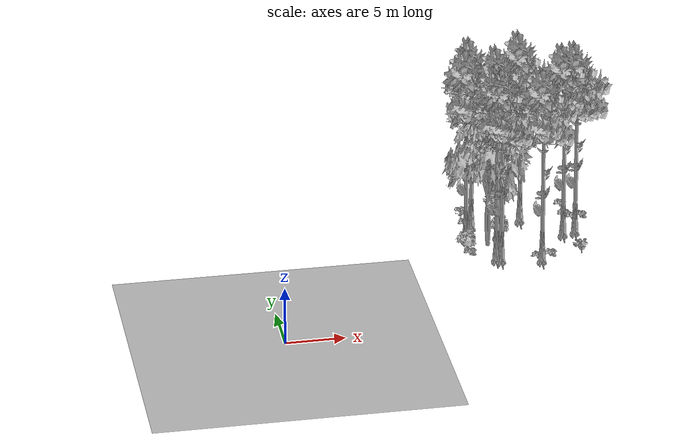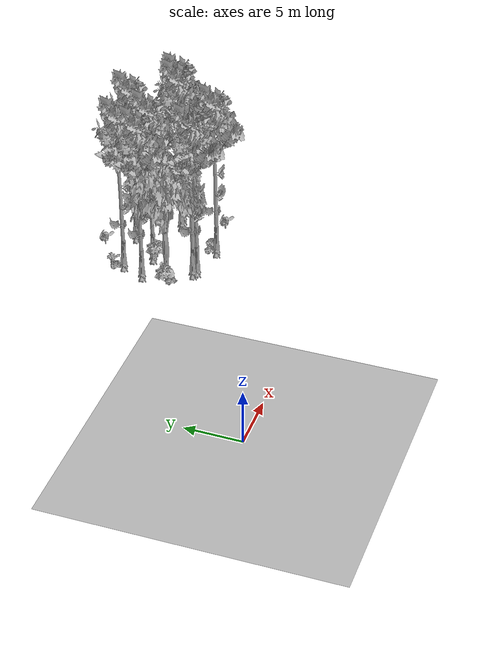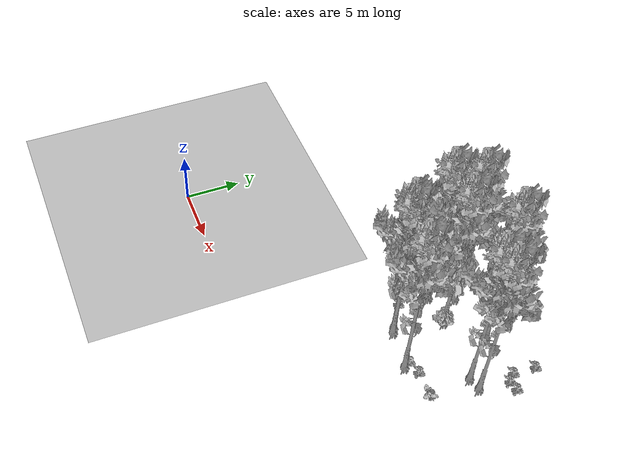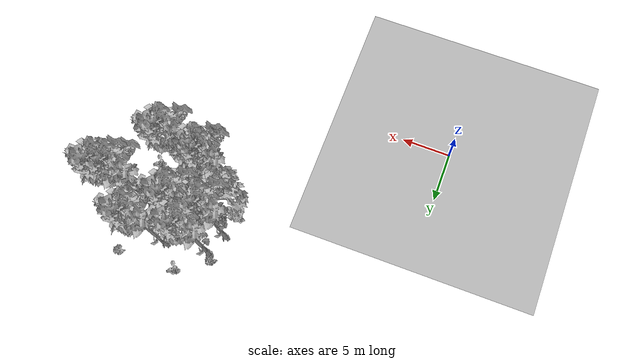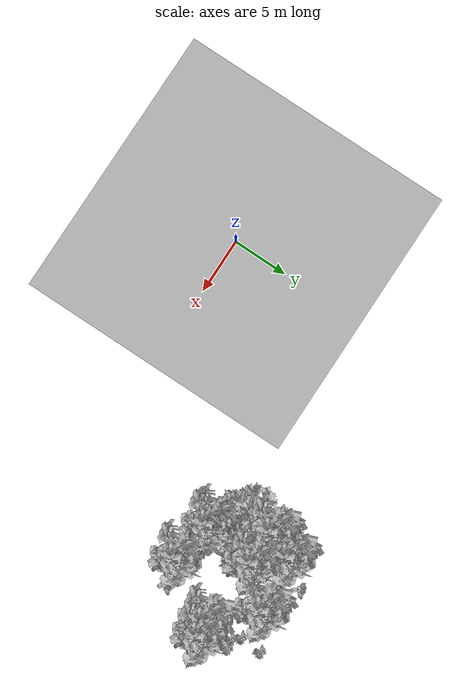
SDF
<sdf version="1.7">
 <world name="default">
  <model name="ground_plane">
   <static>1</static>
   <link name="link">
    <collision name="collision">
     <pose>-50 0 0 0 -0 0</pose>
     <geometry><plane><normal>0 0 1</normal><size>80 80</size></plane></geometry>
     <surface><contact><ode><min_depth>0.01</min_depth><max_vel>0</max_vel></ode></contact></surface>
    </collision>
    <visual name="grass">
     <cast_shadows>0</cast_shadows>
     <geometry>
      <mesh>
       <scale>0.46714285714285714 0.46714285714285714 0.1</scale>
       <uri>file://grass_plane/meshes/grass_plane.dae</uri>
      </mesh>
     </geometry>
    </visual>
   </link>
  </model>
  <model name="Tree 274">
   <static>1</static>
   <pose>27.691978841915187 15.444575562071272 0 1.57079 -0 0</pose>
   <link name="link">
    <collision name="collision">
     <geometry><mesh><scale>3.5 5 3.5</scale><uri>model://tree_9/meshes/tree_9.obj</uri></mesh></geometry>
    </collision>
    <visual name="visual">
     <geometry><mesh><scale>3.5 5 3.5</scale><uri>model://tree_9/meshes/tree_9.obj</uri></mesh></geometry>
    </visual>
   </link>
  </model>
  <model name="Tree 379">
   <static>1</static>
   <pose>26.589511411295803 15.203984949909838 0 1.57079 -0 0</pose>
   <link name="link">
    <collision name="collision">
     <geometry><mesh><scale>3.5 5 3.5</scale><uri>model://tree_9/meshes/tree_9.obj</uri></mesh></geometry>
    </collision>
    <visual name="visual">
     <geometry><mesh><scale>3.5 5 3.5</scale><uri>model://tree_9/meshes/tree_9.obj</uri></mesh></geometry>
    </visual>
   </link>
  </model>
  <model name="Tree 380">
   <static>1</static>
   <pose>23.49402888797104 18.41843487043419 0 1.57079 -0 0</pose>
   <link name="link">
    <collision name="collision">
     <geometry><mesh><scale>3.5 5 3.5</scale><uri>model://tree_9/meshes/tree_9.obj</uri></mesh></geometry>
    </collision>
    <visual name="visual">
     <geometry><mesh><scale>3.5 5 3.5</scale><uri>model://tree_9/meshes/tree_9.obj</uri></mesh></geometry>
    </visual>
   </link>
  </model>
  <model name="Tree 423">
   <static>1</static>
   <pose>20.98754464010203 15.79429613116033 0 1.57079 -0 0</pose>
   <link name="link">
    <collision name="collision">
     <geometry><mesh><scale>3.5 5 3.5</scale><uri>model://tree_9/meshes/tree_9.obj</uri></mesh></geometry>
    </collision>
    <visual name="visual">
     <geometry><mesh><scale>3.5 5 3.5</scale><uri>model://tree_9/meshes/tree_9.obj</uri></mesh></geometry>
    </visual>
   </link>
  </model>
  <model name="Tree 464">
   <static>1</static>
   <pose>19.688622130723736 14.07147187317748 0 1.57079 -0 0</pose>
   <link name="link">
    <collision name="collision">
     <geometry><mesh><scale>3.5 5 3.5</scale><uri>model://tree_2/meshes/tree_2.obj</uri></mesh></geometry>
    </collision>
    <visual name="visual">
     <geometry><mesh><scale>3.5 5 3.5</scale><uri>model://tree_2/meshes/tree_2.obj</uri></mesh></geometry>
    </visual>
   </link>
  </model>
  <model name="Tree 477">
   <static>1</static>
   <pose>23.777715098952804 10.786623088918603 0 1.57079 -0 0</pose>
   <link name="link">
    <collision name="collision">
     <geometry><mesh><scale>3.5 5 3.5</scale><uri>model://tree_9/meshes/tree_9.obj</uri></mesh></geometry>
    </collision>
    <visual name="visual">
     <geometry><mesh><scale>3.5 5 3.5</scale><uri>model://tree_9/meshes/tree_9.obj</uri></mesh></geometry>
    </visual>
   </link>
  </model>
  <model name="Tree 480">
   <static>1</static>
   <pose>18.214263902225312 15.766751661891185 0 1.57079 -0 0</pose>
   <link name="link">
    <collision name="collision">
     <geometry><mesh><scale>3.5 5 3.5</scale><uri>model://tree_9/meshes/tree_9.obj</uri></mesh></geometry>
    </collision>
    <visual name="visual">
     <geometry><mesh><scale>3.5 5 3.5</scale><uri>model://tree_9/meshes/tree_9.obj</uri></mesh></geometry>
    </visual>
   </link>
  </model>
  <model name="Tree 486">
   <static>1</static>
   <pose>19.99008038500471 11.639214555328707 0 1.57079 -0 0</pose>
   <link name="link">
    <collision name="collision">
     <geometry><mesh><scale>3.5 5 3.5</scale><uri>model://tree_9/meshes/tree_9.obj</uri></mesh></geometry>
    </collision>
    <visual name="visual">
     <geometry><mesh><scale>3.5 5 3.5</scale><uri>model://tree_9/meshes/tree_9.obj</uri></mesh></geometry>
    </visual>
   </link>
  </model>
  <model name="Tree 492">
   <static>1</static>
   <pose>19.10185252836292 17.841593112881043 0 1.57079 -0 0</pose>
   <link name="link">
    <collision name="collision">
     <geometry><mesh><scale>3.5 5 3.5</scale><uri>model://tree_9/meshes/tree_9.obj</uri></mesh></geometry>
    </collision>
    <visual name="visual">
     <geometry><mesh><scale>3.5 5 3.5</scale><uri>model://tree_9/meshes/tree_9.obj</uri></mesh></geometry>
    </visual>
   </link>
  </model>
  <model name="Tree 494">
   <static>1</static>
   <pose>20.38961660566987 11.38986333940639 0 1.57079 -0 0</pose>
   <link name="link">
    <collision name="collision">
     <geometry><mesh><scale>3.5 5 3.5</scale><uri>model://tree_9/meshes/tree_9.obj</uri></mesh></geometry>
    </collision>
    <visual name="visual">
     <geometry><mesh><scale>3.5 5 3.5</scale><uri>model://tree_9/meshes/tree_9.obj</uri></mesh></geometry>
    </visual>
   </link>
  </model>
  <model name="Bush 39">
   <static>1</static>
   <pose>27.54761030041169 20.585396159097115 0 1.57079 -0 0</pose>
   <link name="link">
    <collision name="collision">
     <geometry><mesh><scale>2 2 2</scale><uri>model://bush_2/meshes/bush_2.obj</uri></mesh></geometry>
     <surface><contact><collide_without_contact>false</collide_without_contact></contact></surface>
    </collision>
    <visual name="visual">
     <geometry><mesh><scale>2 2 2</scale><uri>model://bush_2/meshes/bush_2.obj</uri></mesh></geometry>
    </visual>
   </link>
  </model>
  <model name="Bush 68">
   <static>1</static>
   <pose>18.623123387633427 18.37779528450912 0 1.57079 -0 0</pose>
   <link name="link">
    <collision name="collision">
     <geometry><mesh><scale>2 2 2</scale><uri>model://bush_2/meshes/bush_2.obj</uri></mesh></geometry>
     <surface><contact><collide_without_contact>false</collide_without_contact></contact></surface>
    </collision>
    <visual name="visual">
     <geometry><mesh><scale>2 2 2</scale><uri>model://bush_2/meshes/bush_2.obj</uri></mesh></geometry>
    </visual>
   </link>
  </model>
  <model name="Bush 142">
   <static>1</static>
   <pose>28.02316056903716 17.991722830538876 0 1.57079 -0 0</pose>
   <link name="link">
    <collision name="collision">
     <geometry><mesh><scale>2 2 2</scale><uri>model://bush_2/meshes/bush_2.obj</uri></mesh></geometry>
     <surface><contact><collide_without_contact>false</collide_without_contact></contact></surface>
    </collision>
    <visual name="visual">
     <geometry><mesh><scale>2 2 2</scale><uri>model://bush_2/meshes/bush_2.obj</uri></mesh></geometry>
    </visual>
   </link>
  </model>
  <model name="Bush 153">
   <static>1</static>
   <pose>27.436673062211497 18.630030029478384 0 1.57079 -0 0</pose>
   <link name="link">
    <collision name="collision">
     <geometry><mesh><scale>2 2 2</scale><uri>model://bush_2/meshes/bush_2.obj</uri></mesh></geometry>
     <surface><contact><collide_without_contact>false</collide_without_contact></contact></surface>
    </collision>
    <visual name="visual">
     <geometry><mesh><scale>2 2 2</scale><uri>model://bush_2/meshes/bush_2.obj</uri></mesh></geometry>
    </visual>
   </link>
  </model>
  <model name="Bush 283">
   <static>1</static>
   <pose>17.82590929827434 13.335054976170596 0 1.57079 -0 0</pose>
   <link name="link">
    <collision name="collision">
     <geometry><mesh><scale>2 2 2</scale><uri>model://bush_1/meshes/bush_1.obj</uri></mesh></geometry>
     <surface><contact><collide_without_contact>false</collide_without_contact></contact></surface>
    </collision>
    <visual name="visual">
     <geometry><mesh><scale>2 2 2</scale><uri>model://bush_1/meshes/bush_1.obj</uri></mesh></geometry>
    </visual>
   </link>
  </model>
  <model name="Bush 308">
   <static>1</static>
   <pose>27.310579435291075 11.205153604841875 0 1.57079 -0 0</pose>
   <link name="link">
    <collision name="collision">
     <geometry><mesh><scale>2 2 2</scale><uri>model://bush_0/meshes/bush_0.obj</uri></mesh></geometry>
     <surface><contact><collide_without_contact>false</collide_without_contact></contact></surface>
    </collision>
    <visual name="visual">
     <geometry><mesh><scale>2 2 2</scale><uri>model://bush_0/meshes/bush_0.obj</uri></mesh></geometry>
    </visual>
   </link>
  </model>
  <model name="Bush 357">
   <static>1</static>
   <pose>23.536970969072314 11.292058440388203 0 1.57079 -0 0</pose>
   <link name="link">
    <collision name="collision">
     <geometry><mesh><scale>2 2 2</scale><uri>model://bush_2/meshes/bush_2.obj</uri></mesh></geometry>
     <surface><contact><collide_without_contact>false</collide_without_contact></contact></surface>
    </collision>
    <visual name="visual">
     <geometry><mesh><scale>2 2 2</scale><uri>model://bush_2/meshes/bush_2.obj</uri></mesh></geometry>
    </visual>
   </link>
  </model>
  <model name="Bush 370">
   <static>1</static>
   <pose>28.823064268703234 18.137869153521848 0 1.57079 -0 0</pose>
   <link name="link">
    <collision name="collision">
     <geometry><mesh><scale>2 2 2</scale><uri>model://bush_2/meshes/bush_2.obj</uri></mesh></geometry>
     <surface><contact><collide_without_contact>false</collide_without_contact></contact></surface>
    </collision>
    <visual name="visual">
     <geometry><mesh><scale>2 2 2</scale><uri>model://bush_2/meshes/bush_2.obj</uri></mesh></geometry>
    </visual>
   </link>
  </model>
  <model name="Bush 499">
   <static>1</static>
   <pose>24.678003370624317 11.571425205284811 0 1.57079 -0 0</pose>
   <link name="link">
    <collision name="collision">
     <geometry><mesh><scale>2 2 2</scale><uri>model://bush_2/meshes/bush_2.obj</uri></mesh></geometry>
     <surface><contact><collide_without_contact>false</collide_without_contact></contact></surface>
    </collision>
    <visual name="visual">
     <geometry><mesh><scale>2 2 2</scale><uri>model://bush_2/meshes/bush_2.obj</uri></mesh></geometry>
    </visual>
   </link>
  </model>
  <model name="Bush 502">
   <static>1</static>
   <pose>18.40106385511684 18.73587880140989 0 1.57079 -0 0</pose>
   <link name="link">
    <collision name="collision">
     <geometry><mesh><scale>2 2 2</scale><uri>model://bush_5/meshes/bush_5.obj</uri></mesh></geometry>
     <surface><contact><collide_without_contact>false</collide_without_contact></contact></surface>
    </collision>
    <visual name="visual">
     <geometry><mesh><scale>2 2 2</scale><uri>model://bush_5/meshes/bush_5.obj</uri></mesh></geometry>
    </visual>
   </link>
  </model>
  <model name="Bush 506">
   <static>1</static>
   <pose>21.510686006772467 20.592132489509922 0 1.57079 -0 0</pose>
   <link name="link">
    <collision name="collision">
     <geometry><mesh><scale>2 2 2</scale><uri>model://bush_0/meshes/bush_0.obj</uri></mesh></geometry>
     <surface><contact><collide_without_contact>false</collide_without_contact></contact></surface>
    </collision>
    <visual name="visual">
     <geometry><mesh><scale>2 2 2</scale><uri>model://bush_0/meshes/bush_0.obj</uri></mesh></geometry>
    </visual>
   </link>
  </model>
  <model name="Bush 512">
   <static>1</static>
   <pose>18.030240712828892 12.959060495590094 0 1.57079 -0 0</pose>
   <link name="link">
    <collision name="collision">
     <geometry><mesh><scale>2 2 2</scale><uri>model://bush_2/meshes/bush_2.obj</uri></mesh></geometry>
     <surface><contact><collide_without_contact>false</collide_without_contact></contact></surface>
    </collision>
    <visual name="visual">
     <geometry><mesh><scale>2 2 2</scale><uri>model://bush_2/meshes/bush_2.obj</uri></mesh></geometry>
    </visual>
   </link>
  </model>
  <model name="Bush 517">
   <static>1</static>
   <pose>21.110156756446088 15.443058480489348 0 1.57079 -0 0</pose>
   <link name="link">
    <collision name="collision">
     <geometry><mesh><scale>2 2 2</scale><uri>model://bush_1/meshes/bush_1.obj</uri></mesh></geometry>
     <surface><contact><collide_without_contact>false</collide_without_contact></contact></surface>
    </collision>
    <visual name="visual">
     <geometry><mesh><scale>2 2 2</scale><uri>model://bush_1/meshes/bush_1.obj</uri></mesh></geometry>
    </visual>
   </link>
  </model>
 </world>
</sdf>
